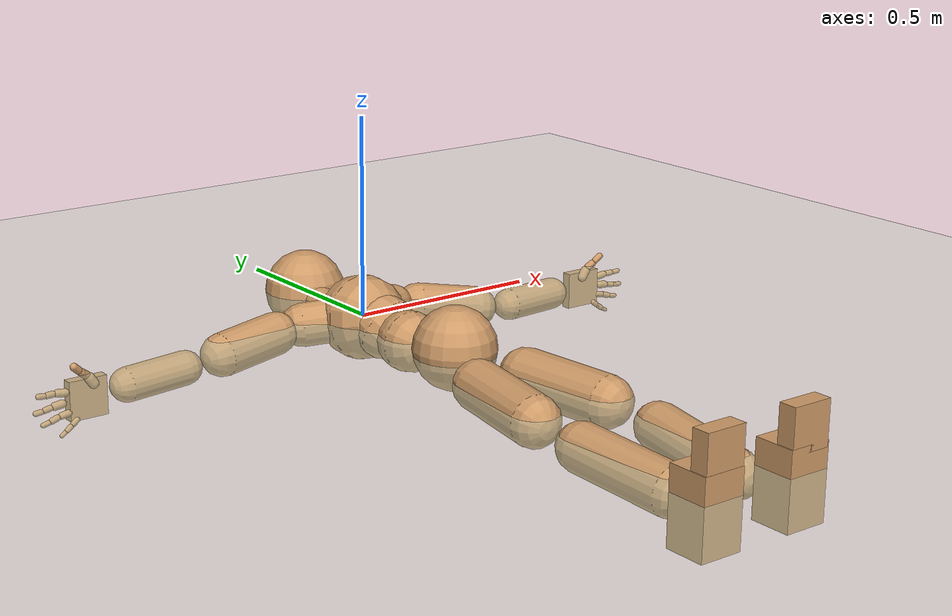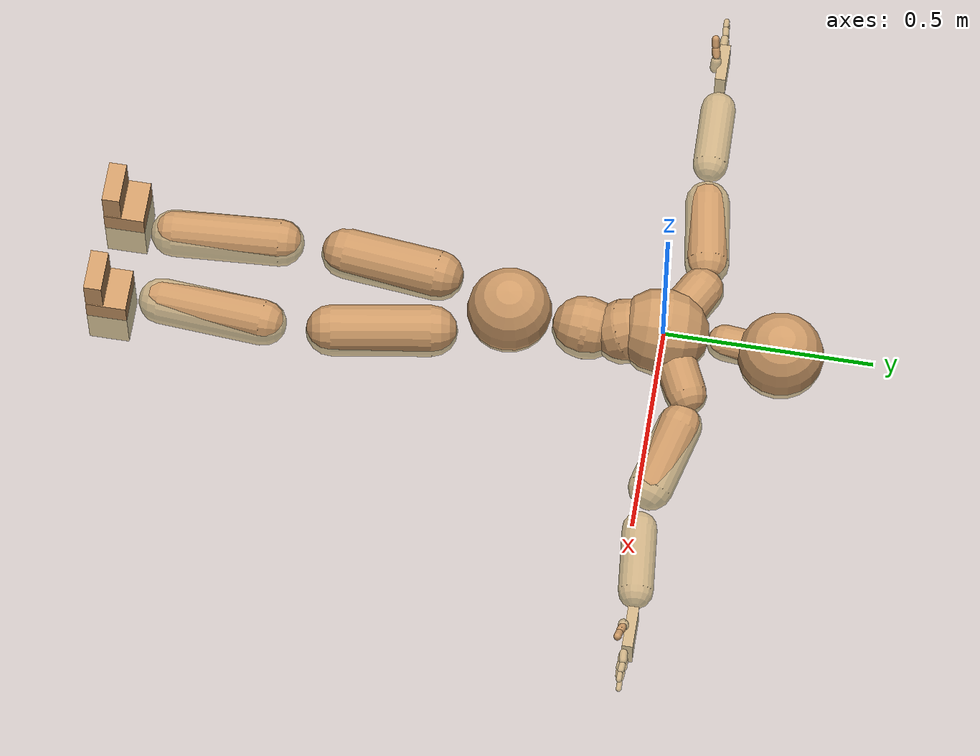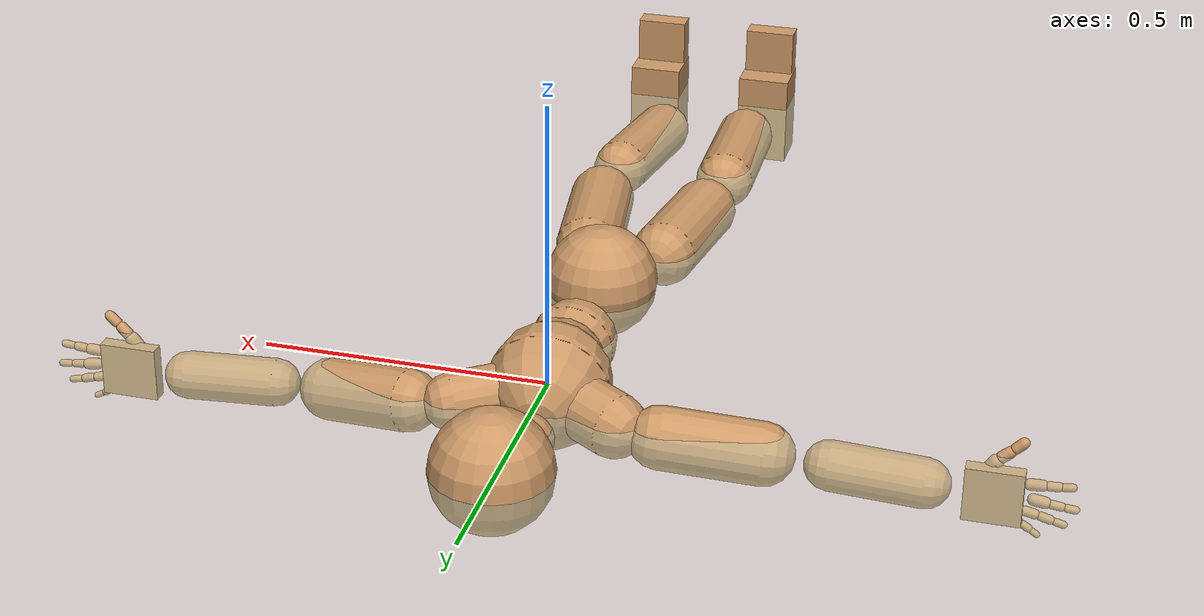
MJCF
<mujoco model="humanoid">
  <compiler coordinate="local"/>
  <default>
    <joint damping="0.0" armature="0.01" stiffness="0.0" limited="true"/>
    <geom conaffinity="1" condim="3" contype="7" margin="0.001" rgba="0.8 0.6 .4 1"/>
  </default>
  <asset>
    <texture type="skybox" builtin="gradient" rgb1=".4 .5 .6" rgb2="0 0 0" width="100" height="100"/>
    <texture builtin="flat" height="1278" mark="cross" markrgb="1 1 1" name="texgeom" random="0.01" rgb1="0.8 0.6 0.4" rgb2="0.8 0.6 0.4" type="cube" width="127"/>
    <texture builtin="checker" height="100" name="texplane" rgb1="0 0 0" rgb2="0.8 0.8 0.8" type="2d" width="100"/>
    <material name="MatPlane" reflectance="0.5" shininess="1" specular="1" texrepeat="60 60" texture="texplane"/>
    <material name="geom" texture="texgeom" texuniform="true"/>
  </asset>
  <worldbody>
    <light cutoff="100" diffuse="1 1 1" dir="-0 0 -1.3" directional="true" exponent="1" pos="0 0 1.3" specular=".1 .1 .1"/>
    <geom conaffinity="1" condim="3" name="floor" pos="0 0 0" rgba="0.8 0.9 0.8 1" size="100 100 .2" type="plane" material="MatPlane"/>
    <body name="Pelvis" pos="0.003 -0.3687 0.0127">
      <freejoint name="Pelvis"/>
      <geom type="sphere" contype="1" conaffinity="1" density="4629.6296296296305" size="0.1013" pos="0.0000 0.0000 0.0000" name="Pelvis"/>
      <body name="L_Hip" pos="0.0588 -0.096 -0.0263">
        <joint name="L_Hip_x" type="hinge" pos="0 0 0" axis="1 0 0" user="250 2.5 1 500 10 2" armature="0.01" range="-90.0000 90.0000" damping="0" stiffness="0"/>
        <joint name="L_Hip_y" type="hinge" pos="0 0 0" axis="0 1 0" user="250 2.5 1 500 10 2" armature="0.01" range="-90.0000 90.0000" damping="0" stiffness="0"/>
        <joint name="L_Hip_z" type="hinge" pos="0 0 0" axis="0 0 1" user="250 2.5 1 500 10 2" armature="0.01" range="-90.0000 90.0000" damping="0" stiffness="0"/>
        <geom type="capsule" contype="1" conaffinity="1" density="2040.816327" fromto="0.0114 -0.0788 -0.0017 0.0454 -0.3153 -0.0070" size="0.0614" name="L_Hip"/>
        <body name="L_Knee" pos="0.0568 -0.3941 -0.0087">
          <joint name="L_Knee_x" type="hinge" pos="0 0 0" axis="1 0 0" user="250 2.5 1 500 10 2" armature="0.01" range="-180.0000 180.0000" damping="0" stiffness="0"/>
          <joint name="L_Knee_y" type="hinge" pos="0 0 0" axis="0 1 0" user="250 2.5 1 500 10 2" armature="0.01" range="-5.6250 5.6250" damping="0" stiffness="0"/>
          <joint name="L_Knee_z" type="hinge" pos="0 0 0" axis="0 0 1" user="250 2.5 1 500 10 2" armature="0.01" range="-5.6250 5.6250" damping="0" stiffness="0"/>
          <geom type="capsule" contype="1" conaffinity="1" density="1234.567901" fromto="-0.0089 -0.0841 -0.0066 -0.0355 -0.3362 -0.0264" size="0.0548" name="L_Knee"/>
          <body name="L_Ankle" pos="-0.0444 -0.4203 -0.033">
            <joint name="L_Ankle_x" type="hinge" pos="0 0 0" axis="1 0 0" user="150 2.5 1 500 10 2" armature="0.01" range="-90.0000 90.0000" damping="0" stiffness="0"/>
            <joint name="L_Ankle_y" type="hinge" pos="0 0 0" axis="0 1 0" user="150 2.5 1 500 10 2" armature="0.01" range="-90.0000 90.0000" damping="0" stiffness="0"/>
            <joint name="L_Ankle_z" type="hinge" pos="0 0 0" axis="0 0 1" user="150 2.5 1 500 10 2" armature="0.01" range="-90.0000 90.0000" damping="0" stiffness="0"/>
            <geom type="box" density="450.058393" pos="0.0424 -0.0304 0.0244" size="0.0515 0.0481 0.089" quat="1.0000 0.0000 0.0000 0.0000" name="L_Ankle"/>
            <body name="L_Toe" pos="0.0492 -0.0609 0.1228">
              <joint name="L_Toe_x" type="hinge" pos="0 0 0" axis="1 0 0" user="150 1 1 500 1 1" armature="0.01" range="-90.0000 90.0000" damping="0" stiffness="0"/>
              <joint name="L_Toe_y" type="hinge" pos="0 0 0" axis="0 1 0" user="150 1 1 500 1 1" armature="0.01" range="-45.0000 45.0000" damping="0" stiffness="0"/>
              <joint name="L_Toe_z" type="hinge" pos="0 0 0" axis="0 0 1" user="150 1 1 500 1 1" armature="0.01" range="-45.0000 45.0000" damping="0" stiffness="0"/>
              <geom type="box" density="420.438102" pos="-0.0068 0.0035 0.0267" size="0.0493 0.0211 0.0513" quat="1.0000 0.0000 0.0000 0.0000" name="L_Toe"/>
            </body>
          </body>
        </body>
      </body>
      <body name="R_Hip" pos="-0.0638 -0.1078 -0.0211">
        <joint name="R_Hip_x" type="hinge" pos="0 0 0" axis="1 0 0" user="250 2.5 1 500 10 2" armature="0.01" range="-90.0000 90.0000" damping="0" stiffness="0"/>
        <joint name="R_Hip_y" type="hinge" pos="0 0 0" axis="0 1 0" user="250 2.5 1 500 10 2" armature="0.01" range="-90.0000 90.0000" damping="0" stiffness="0"/>
        <joint name="R_Hip_z" type="hinge" pos="0 0 0" axis="0 0 1" user="250 2.5 1 500 10 2" armature="0.01" range="-90.0000 90.0000" damping="0" stiffness="0"/>
        <geom type="capsule" contype="1" conaffinity="1" density="2040.816327" fromto="-0.0092 -0.0753 -0.0033 -0.0368 -0.3014 -0.0133" size="0.0607" name="R_Hip"/>
        <body name="R_Knee" pos="-0.046 -0.3767 -0.0166">
          <joint name="R_Knee_x" type="hinge" pos="0 0 0" axis="1 0 0" user="250 2.5 1 500 10 2" armature="0.01" range="-180.0000 180.0000" damping="0" stiffness="0"/>
          <joint name="R_Knee_y" type="hinge" pos="0 0 0" axis="0 1 0" user="250 2.5 1 500 10 2" armature="0.01" range="-5.6250 5.6250" damping="0" stiffness="0"/>
          <joint name="R_Knee_z" type="hinge" pos="0 0 0" axis="0 0 1" user="250 2.5 1 500 10 2" armature="0.01" range="-5.6250 5.6250" damping="0" stiffness="0"/>
          <geom type="capsule" contype="1" conaffinity="1" density="1234.567901" fromto="0.0031 -0.0857 -0.0042 0.0123 -0.3428 -0.0167" size="0.0565" name="R_Knee"/>
          <body name="R_Ankle" pos="0.0154 -0.4285 -0.0209">
            <joint name="R_Ankle_x" type="hinge" pos="0 0 0" axis="1 0 0" user="150 1 1 500 10 2" armature="0.01" range="-90.0000 90.0000" damping="0" stiffness="0"/>
            <joint name="R_Ankle_y" type="hinge" pos="0 0 0" axis="0 1 0" user="150 1 1 500 10 2" armature="0.01" range="-90.0000 90.0000" damping="0" stiffness="0"/>
            <joint name="R_Ankle_z" type="hinge" pos="0 0 0" axis="0 0 1" user="150 1 1 500 10 2" armature="0.01" range="-90.0000 90.0000" damping="0" stiffness="0"/>
            <geom type="box" density="450.049361" pos="-0.0252 -0.0278 0.0150" size="0.0515 0.0481 0.089" quat="1.0000 0.0000 0.0000 0.0000" name="R_Ankle"/>
            <body name="R_Toe" pos="-0.0401 -0.061 0.1236">
              <joint name="R_Toe_x" type="hinge" pos="0 0 0" axis="1 0 0" user="150 1 1 500 1 1" armature="0.01" range="-90.0000 90.0000" damping="0" stiffness="0"/>
              <joint name="R_Toe_y" type="hinge" pos="0 0 0" axis="0 1 0" user="150 1 1 500 1 1" armature="0.01" range="-45.0000 45.0000" damping="0" stiffness="0"/>
              <joint name="R_Toe_z" type="hinge" pos="0 0 0" axis="0 0 1" user="150 1 1 500 1 1" armature="0.01" range="-45.0000 45.0000" damping="0" stiffness="0"/>
              <geom type="box" density="420.432375" pos="0.0149 0.0063 0.0165" size="0.0493 0.0211 0.0513" quat="1.0000 0.0000 0.0000 0.0000" name="R_Toe"/>
            </body>
          </body>
        </body>
      </body>
      <body name="Torso" pos="-0.0028 0.1145 -0.029">
        <joint name="Torso_x" type="hinge" pos="0 0 0" axis="1 0 0" user="500 5 1 500 10 2" armature="0.01" range="-60.0000 60.0000" damping="0" stiffness="0"/>
        <joint name="Torso_y" type="hinge" pos="0 0 0" axis="0 1 0" user="500 5 1 500 10 2" armature="0.01" range="-60.0000 60.0000" damping="0" stiffness="0"/>
        <joint name="Torso_z" type="hinge" pos="0 0 0" axis="0 0 1" user="500 5 1 500 10 2" armature="0.01" range="-60.0000 60.0000" damping="0" stiffness="0"/>
        <geom type="capsule" contype="1" conaffinity="1" density="2040.816327" fromto="0.0045 0.0624 -0.0030 0.0055 0.0762 -0.0036" size="0.0745" name="Torso"/>
        <body name="Spine" pos="0.01 0.1386 -0.0066">
          <joint name="Spine_x" type="hinge" pos="0 0 0" axis="1 0 0" user="500 5 1 500 10 2" armature="0.01" range="-60.0000 60.0000" damping="0" stiffness="0"/>
          <joint name="Spine_y" type="hinge" pos="0 0 0" axis="0 1 0" user="500 5 1 500 10 2" armature="0.01" range="-60.0000 60.0000" damping="0" stiffness="0"/>
          <joint name="Spine_z" type="hinge" pos="0 0 0" axis="0 0 1" user="500 5 1 500 10 2" armature="0.01" range="-60.0000 60.0000" damping="0" stiffness="0"/>
          <geom type="capsule" contype="1" conaffinity="1" density="2040.816327" fromto="-0.0052 0.0248 0.0128 -0.0064 0.0303 0.0156" size="0.0787" name="Spine"/>
          <body name="Chest" pos="-0.0116 0.0552 0.0284">
            <joint name="Chest_x" type="hinge" pos="0 0 0" axis="1 0 0" user="500 5 1 500 10 2" armature="0.01" range="-60.0000 60.0000" damping="0" stiffness="0"/>
            <joint name="Chest_y" type="hinge" pos="0 0 0" axis="0 1 0" user="500 5 1 500 10 2" armature="0.01" range="-60.0000 60.0000" damping="0" stiffness="0"/>
            <joint name="Chest_z" type="hinge" pos="0 0 0" axis="0 0 1" user="500 5 1 500 10 2" armature="0.01" range="-60.0000 60.0000" damping="0" stiffness="0"/>
            <geom type="capsule" contype="1" conaffinity="1" density="2040.816327" fromto="-0.0021 0.0522 -0.0078 -0.0026 0.0639 -0.0095" size="0.1054" name="Chest"/>
            <body name="Neck" pos="-0.0125 0.1724 -0.0312">
              <joint name="Neck_x" type="hinge" pos="0 0 0" axis="1 0 0" user="150 1 1 250 50 4" armature="0.01" range="-180.0000 180.0000" damping="0" stiffness="0"/>
              <joint name="Neck_y" type="hinge" pos="0 0 0" axis="0 1 0" user="150 1 1 250 50 4" armature="0.01" range="-180.0000 180.0000" damping="0" stiffness="0"/>
              <joint name="Neck_z" type="hinge" pos="0 0 0" axis="0 0 1" user="150 1 1 250 50 4" armature="0.01" range="-180.0000 180.0000" damping="0" stiffness="0"/>
              <geom type="capsule" contype="1" conaffinity="1" density="1000" fromto="0.0051 0.0339 0.0045 0.0203 0.1357 0.0181" size="0.0433" name="Neck"/>
              <body name="Head" pos="0.0254 0.1696 0.0226">
                <joint name="Head_x" type="hinge" pos="0 0 0" axis="1 0 0" user="150 1 1 250 50 4" armature="0.01" range="-90.0000 90.0000" damping="0" stiffness="0"/>
                <joint name="Head_y" type="hinge" pos="0 0 0" axis="0 1 0" user="150 1 1 250 50 4" armature="0.01" range="-90.0000 90.0000" damping="0" stiffness="0"/>
                <joint name="Head_z" type="hinge" pos="0 0 0" axis="0 0 1" user="150 1 1 250 50 4" armature="0.01" range="-90.0000 90.0000" damping="0" stiffness="0"/>
                <geom type="sphere" contype="1" conaffinity="1" density="1000" size="0.1031" pos="0.0000 0.0000 0.0000" name="Head"/>
              </body>
            </body>
            <body name="L_Thorax" pos="0.0468 0.0884 -0.0071">
              <joint name="L_Thorax_x" type="hinge" pos="0 0 0" axis="1 0 0" user="200 2 1 500 50 4" armature="0.01" range="-180.0000 180.0000" damping="0" stiffness="0"/>
              <joint name="L_Thorax_y" type="hinge" pos="0 0 0" axis="0 1 0" user="200 2 1 500 50 4" armature="0.01" range="-180.0000 180.0000" damping="0" stiffness="0"/>
              <joint name="L_Thorax_z" type="hinge" pos="0 0 0" axis="0 0 1" user="200 2 1 500 50 4" armature="0.01" range="-180.0000 180.0000" damping="0" stiffness="0"/>
              <geom type="capsule" contype="1" conaffinity="1" density="1000" fromto="0.0243 0.0117 -0.0032 0.0971 0.0468 -0.0128" size="0.0502" name="L_Thorax"/>
              <body name="L_Shoulder" pos="0.1213 0.0584 -0.016">
                <joint name="L_Shoulder_x" type="hinge" pos="0 0 0" axis="1 0 0" user="200 2 1 500 50 4" armature="0.01" range="-180.0000 180.0000" damping="0" stiffness="0"/>
                <joint name="L_Shoulder_y" type="hinge" pos="0 0 0" axis="0 1 0" user="200 2 1 500 50 4" armature="0.01" range="-180.0000 180.0000" damping="0" stiffness="0"/>
                <joint name="L_Shoulder_z" type="hinge" pos="0 0 0" axis="0 0 1" user="200 2 1 500 50 4" armature="0.01" range="-180.0000 180.0000" damping="0" stiffness="0"/>
                <geom type="capsule" contype="1" conaffinity="1" density="1000" fromto="0.0520 -0.0149 -0.0088 0.2079 -0.0596 -0.0352" size="0.0535" name="L_Shoulder"/>
                <body name="L_Elbow" pos="0.2599 -0.0745 -0.044">
                  <joint name="L_Elbow_x" type="hinge" pos="0 0 0" axis="1 0 0" user="150 1 1 150 10 2" armature="0.01" range="-720.0000 720.0000" damping="0" stiffness="0"/>
                  <joint name="L_Elbow_y" type="hinge" pos="0 0 0" axis="0 1 0" user="150 1 1 150 10 2" armature="0.01" range="-720.0000 720.0000" damping="0" stiffness="0"/>
                  <joint name="L_Elbow_z" type="hinge" pos="0 0 0" axis="0 0 1" user="150 1 1 150 10 2" armature="0.01" range="-720.0000 720.0000" damping="0" stiffness="0"/>
                  <geom type="capsule" contype="1" conaffinity="1" density="1000" fromto="0.0522 0.0047 -0.0003 0.2088 0.0190 -0.0013" size="0.0415" name="L_Elbow"/>
                  <body name="L_Wrist" pos="0.2611 0.0237 -0.0017">
                    <joint name="L_Wrist_x" type="hinge" pos="0 0 0" axis="1 0 0" user="100 1 1 150 1 1" armature="0.01" range="-180.0000 180.0000" damping="0" stiffness="0"/>
                    <joint name="L_Wrist_y" type="hinge" pos="0 0 0" axis="0 1 0" user="100 1 1 150 1 1" armature="0.01" range="-180.0000 180.0000" damping="0" stiffness="0"/>
                    <joint name="L_Wrist_z" type="hinge" pos="0 0 0" axis="0 0 1" user="100 1 1 150 1 1" armature="0.01" range="-180.0000 180.0000" damping="0" stiffness="0"/>
                    <geom type="box" density="1203.169389" pos="0.0545 -0.0014 -0.0032" size="0.0504 0.0127 0.0476" quat="1.0000 0.0000 0.0000 0.0000" name="L_Wrist"/>
                    <body name="L_Index1" pos="0.1061 -0.0087 0.02">
                      <joint name="L_Index1_x" type="hinge" pos="0 0 0" axis="1 0 0" user="100 10 1 150" armature="0.01" range="-180.0000 180.0000" damping="0" stiffness="0"/>
                      <joint name="L_Index1_y" type="hinge" pos="0 0 0" axis="0 1 0" user="100 10 1 150" armature="0.01" range="-180.0000 180.0000" damping="0" stiffness="0"/>
                      <joint name="L_Index1_z" type="hinge" pos="0 0 0" axis="0 0 1" user="100 10 1 150" armature="0.01" range="-180.0000 180.0000" damping="0" stiffness="0"/>
                      <geom type="capsule" contype="1" conaffinity="1" density="1000" fromto="0.0066 0.0005 0.0006 0.0262 0.0019 0.0024" size="0.0094" name="L_Index1"/>
                      <body name="L_Index2" pos="0.0328 0.0024 0.003">
                        <joint name="L_Index2_x" type="hinge" pos="0 0 0" axis="1 0 0" user="100 10 1 150" armature="0.01" range="-180.0000 180.0000" damping="0" stiffness="0"/>
                        <joint name="L_Index2_y" type="hinge" pos="0 0 0" axis="0 1 0" user="100 10 1 150" armature="0.01" range="-180.0000 180.0000" damping="0" stiffness="0"/>
                        <joint name="L_Index2_z" type="hinge" pos="0 0 0" axis="0 0 1" user="100 10 1 150" armature="0.01" range="-180.0000 180.0000" damping="0" stiffness="0"/>
                        <geom type="capsule" contype="1" conaffinity="1" density="1000" fromto="0.0046 -0.0005 -0.0000 0.0185 -0.0019 -0.0000" size="0.0078" name="L_Index2"/>
                        <body name="L_Index3" pos="0.0231 -0.0024 0">
                          <joint name="L_Index3_x" type="hinge" pos="0 0 0" axis="1 0 0" user="100 10 1 150" armature="0.01" range="-180.0000 180.0000" damping="0" stiffness="0"/>
                          <joint name="L_Index3_y" type="hinge" pos="0 0 0" axis="0 1 0" user="100 10 1 150" armature="0.01" range="-180.0000 180.0000" damping="0" stiffness="0"/>
                          <joint name="L_Index3_z" type="hinge" pos="0 0 0" axis="0 0 1" user="100 10 1 150" armature="0.01" range="-180.0000 180.0000" damping="0" stiffness="0"/>
                          <geom type="capsule" contype="1" conaffinity="1" density="1000" fromto="0.0050 -0.0001 0.0004 0.0201 -0.0003 0.0016" size="0.0066" name="L_Index3"/>
                        </body>
                      </body>
                    </body>
                    <body name="L_Middle1" pos="0.1139 -0.0062 -0.0042">
                      <joint name="L_Middle1_x" type="hinge" pos="0 0 0" axis="1 0 0" user="100 10 1 150" armature="0.01" range="-180.0000 180.0000" damping="0" stiffness="0"/>
                      <joint name="L_Middle1_y" type="hinge" pos="0 0 0" axis="0 1 0" user="100 10 1 150" armature="0.01" range="-180.0000 180.0000" damping="0" stiffness="0"/>
                      <joint name="L_Middle1_z" type="hinge" pos="0 0 0" axis="0 0 1" user="100 10 1 150" armature="0.01" range="-180.0000 180.0000" damping="0" stiffness="0"/>
                      <geom type="capsule" contype="1" conaffinity="1" density="1000" fromto="0.0063 0.0002 -0.0008 0.0251 0.0007 -0.0033" size="0.0097" name="L_Middle1"/>
                      <body name="L_Middle2" pos="0.0314 0.0008 -0.0041">
                        <joint name="L_Middle2_x" type="hinge" pos="0 0 0" axis="1 0 0" user="100 10 1 150" armature="0.01" range="-180.0000 180.0000" damping="0" stiffness="0"/>
                        <joint name="L_Middle2_y" type="hinge" pos="0 0 0" axis="0 1 0" user="100 10 1 150" armature="0.01" range="-180.0000 180.0000" damping="0" stiffness="0"/>
                        <joint name="L_Middle2_z" type="hinge" pos="0 0 0" axis="0 0 1" user="100 10 1 150" armature="0.01" range="-180.0000 180.0000" damping="0" stiffness="0"/>
                        <geom type="capsule" contype="1" conaffinity="1" density="1000" fromto="0.0048 -0.0004 -0.0009 0.0193 -0.0017 -0.0034" size="0.0072" name="L_Middle2"/>
                        <body name="L_Middle3" pos="0.0241 -0.0021 -0.0043">
                          <joint name="L_Middle3_x" type="hinge" pos="0 0 0" axis="1 0 0" user="100 10 1 150" armature="0.01" range="-180.0000 180.0000" damping="0" stiffness="0"/>
                          <joint name="L_Middle3_y" type="hinge" pos="0 0 0" axis="0 1 0" user="100 10 1 150" armature="0.01" range="-180.0000 180.0000" damping="0" stiffness="0"/>
                          <joint name="L_Middle3_z" type="hinge" pos="0 0 0" axis="0 0 1" user="100 10 1 150" armature="0.01" range="-180.0000 180.0000" damping="0" stiffness="0"/>
                          <geom type="capsule" contype="1" conaffinity="1" density="1000" fromto="0.0052 -0.0000 -0.0005 0.0209 -0.0001 -0.0018" size="0.0063" name="L_Middle3"/>
                        </body>
                      </body>
                    </body>
                    <body name="L_Pinky1" pos="0.0878 -0.0149 -0.0454">
                      <joint name="L_Pinky1_x" type="hinge" pos="0 0 0" axis="1 0 0" user="100 10 1 150" armature="0.01" range="-180.0000 180.0000" damping="0" stiffness="0"/>
                      <joint name="L_Pinky1_y" type="hinge" pos="0 0 0" axis="0 1 0" user="100 10 1 150" armature="0.01" range="-180.0000 180.0000" damping="0" stiffness="0"/>
                      <joint name="L_Pinky1_z" type="hinge" pos="0 0 0" axis="0 0 1" user="100 10 1 150" armature="0.01" range="-180.0000 180.0000" damping="0" stiffness="0"/>
                      <geom type="capsule" contype="1" conaffinity="1" density="1000" fromto="0.0032 -0.0002 -0.0025 0.0128 -0.0010 -0.0098" size="0.0069" name="L_Pinky1"/>
                      <body name="L_Pinky2" pos="0.0161 -0.0012 -0.0123">
                        <joint name="L_Pinky2_x" type="hinge" pos="0 0 0" axis="1 0 0" user="100 10 1 150" armature="0.01" range="-180.0000 180.0000" damping="0" stiffness="0"/>
                        <joint name="L_Pinky2_y" type="hinge" pos="0 0 0" axis="0 1 0" user="100 10 1 150" armature="0.01" range="-180.0000 180.0000" damping="0" stiffness="0"/>
                        <joint name="L_Pinky2_z" type="hinge" pos="0 0 0" axis="0 0 1" user="100 10 1 150" armature="0.01" range="-180.0000 180.0000" damping="0" stiffness="0"/>
                        <geom type="capsule" contype="1" conaffinity="1" density="1000" fromto="0.0032 -0.0004 -0.0023 0.0128 -0.0014 -0.0091" size="0.0066" name="L_Pinky2"/>
                        <body name="L_Pinky3" pos="0.016 -0.0018 -0.0114">
                          <joint name="L_Pinky3_x" type="hinge" pos="0 0 0" axis="1 0 0" user="100 10 1 150" armature="0.01" range="-180.0000 180.0000" damping="0" stiffness="0"/>
                          <joint name="L_Pinky3_y" type="hinge" pos="0 0 0" axis="0 1 0" user="100 10 1 150" armature="0.01" range="-180.0000 180.0000" damping="0" stiffness="0"/>
                          <joint name="L_Pinky3_z" type="hinge" pos="0 0 0" axis="0 0 1" user="100 10 1 150" armature="0.01" range="-180.0000 180.0000" damping="0" stiffness="0"/>
                          <geom type="capsule" contype="1" conaffinity="1" density="1000" fromto="0.0036 0.0000 -0.0019 0.0144 0.0002 -0.0075" size="0.0051" name="L_Pinky3"/>
                        </body>
                      </body>
                    </body>
                    <body name="L_Ring1" pos="0.1017 -0.0093 -0.0285">
                      <joint name="L_Ring1_x" type="hinge" pos="0 0 0" axis="1 0 0" user="100 10 1 150" armature="0.01" range="-180.0000 180.0000" damping="0" stiffness="0"/>
                      <joint name="L_Ring1_y" type="hinge" pos="0 0 0" axis="0 1 0" user="100 10 1 150" armature="0.01" range="-180.0000 180.0000" damping="0" stiffness="0"/>
                      <joint name="L_Ring1_z" type="hinge" pos="0 0 0" axis="0 0 1" user="100 10 1 150" armature="0.01" range="-180.0000 180.0000" damping="0" stiffness="0"/>
                      <geom type="capsule" contype="1" conaffinity="1" density="1000" fromto="0.0058 0.0003 -0.0011 0.0231 0.0013 -0.0043" size="0.0082" name="L_Ring1"/>
                      <body name="L_Ring2" pos="0.0289 0.0016 -0.0054">
                        <joint name="L_Ring2_x" type="hinge" pos="0 0 0" axis="1 0 0" user="100 10 1 150" armature="0.01" range="-180.0000 180.0000" damping="0" stiffness="0"/>
                        <joint name="L_Ring2_y" type="hinge" pos="0 0 0" axis="0 1 0" user="100 10 1 150" armature="0.01" range="-180.0000 180.0000" damping="0" stiffness="0"/>
                        <joint name="L_Ring2_z" type="hinge" pos="0 0 0" axis="0 0 1" user="100 10 1 150" armature="0.01" range="-180.0000 180.0000" damping="0" stiffness="0"/>
                        <geom type="capsule" contype="1" conaffinity="1" density="1000" fromto="0.0047 -0.0003 -0.0015 0.0187 -0.0012 -0.0058" size="0.0076" name="L_Ring2"/>
                        <body name="L_Ring3" pos="0.0234 -0.0015 -0.0073">
                          <joint name="L_Ring3_x" type="hinge" pos="0 0 0" axis="1 0 0" user="100 10 1 150" armature="0.01" range="-180.0000 180.0000" damping="0" stiffness="0"/>
                          <joint name="L_Ring3_y" type="hinge" pos="0 0 0" axis="0 1 0" user="100 10 1 150" armature="0.01" range="-180.0000 180.0000" damping="0" stiffness="0"/>
                          <joint name="L_Ring3_z" type="hinge" pos="0 0 0" axis="0 0 1" user="100 10 1 150" armature="0.01" range="-180.0000 180.0000" damping="0" stiffness="0"/>
                          <geom type="capsule" contype="1" conaffinity="1" density="1000" fromto="0.0051 0.0001 -0.0011 0.0203 0.0004 -0.0042" size="0.0059" name="L_Ring3"/>
                        </body>
                      </body>
                    </body>
                    <body name="L_Thumb1" pos="0.0425 -0.0187 0.0268">
                      <joint name="L_Thumb1_x" type="hinge" pos="0 0 0" axis="1 0 0" user="100 10 1 150" armature="0.01" range="-180.0000 180.0000" damping="0" stiffness="0"/>
                      <joint name="L_Thumb1_y" type="hinge" pos="0 0 0" axis="0 1 0" user="100 10 1 150" armature="0.01" range="-180.0000 180.0000" damping="0" stiffness="0"/>
                      <joint name="L_Thumb1_z" type="hinge" pos="0 0 0" axis="0 0 1" user="100 10 1 150" armature="0.01" range="-180.0000 180.0000" damping="0" stiffness="0"/>
                      <geom type="capsule" contype="1" conaffinity="1" density="1000" fromto="0.0035 0.0002 0.0052 0.0141 0.0008 0.0207" size="0.0125" name="L_Thumb1"/>
                      <body name="L_Thumb2" pos="0.0176 0.001 0.0259">
                        <joint name="L_Thumb2_x" type="hinge" pos="0 0 0" axis="1 0 0" user="100 10 1 150" armature="0.01" range="-180.0000 180.0000" damping="0" stiffness="0"/>
                        <joint name="L_Thumb2_y" type="hinge" pos="0 0 0" axis="0 1 0" user="100 10 1 150" armature="0.01" range="-180.0000 180.0000" damping="0" stiffness="0"/>
                        <joint name="L_Thumb2_z" type="hinge" pos="0 0 0" axis="0 0 1" user="100 10 1 150" armature="0.01" range="-180.0000 180.0000" damping="0" stiffness="0"/>
                        <geom type="capsule" contype="1" conaffinity="1" density="1000" fromto="0.0042 -0.0011 0.0032 0.0170 -0.0042 0.0128" size="0.0099" name="L_Thumb2"/>
                        <body name="L_Thumb3" pos="0.0212 -0.0053 0.016">
                          <joint name="L_Thumb3_x" type="hinge" pos="0 0 0" axis="1 0 0" user="100 10 1 150" armature="0.01" range="-180.0000 180.0000" damping="0" stiffness="0"/>
                          <joint name="L_Thumb3_y" type="hinge" pos="0 0 0" axis="0 1 0" user="100 10 1 150" armature="0.01" range="-180.0000 180.0000" damping="0" stiffness="0"/>
                          <joint name="L_Thumb3_z" type="hinge" pos="0 0 0" axis="0 0 1" user="100 10 1 150" armature="0.01" range="-180.0000 180.0000" damping="0" stiffness="0"/>
                          <geom type="capsule" contype="1" conaffinity="1" density="1000" fromto="0.0046 -0.0007 0.0036 0.0186 -0.0026 0.0144" size="0.009" name="L_Thumb3"/>
                        </body>
                      </body>
                    </body>
                  </body>
                </body>
              </body>
            </body>
            <body name="R_Thorax" pos="-0.0484 0.0876 -0.0135">
              <joint name="R_Thorax_x" type="hinge" pos="0 0 0" axis="1 0 0" user="200 2 1 150 10 2" armature="0.01" range="-180.0000 180.0000" damping="0" stiffness="0"/>
              <joint name="R_Thorax_y" type="hinge" pos="0 0 0" axis="0 1 0" user="200 2 1 150 10 2" armature="0.01" range="-180.0000 180.0000" damping="0" stiffness="0"/>
              <joint name="R_Thorax_z" type="hinge" pos="0 0 0" axis="0 0 1" user="200 2 1 150 10 2" armature="0.01" range="-180.0000 180.0000" damping="0" stiffness="0"/>
              <geom type="capsule" contype="1" conaffinity="1" density="1000" fromto="-0.0209 0.0109 -0.0026 -0.0837 0.0435 -0.0103" size="0.0551" name="R_Thorax"/>
              <body name="R_Shoulder" pos="-0.1047 0.0543 -0.0129">
                <joint name="R_Shoulder_x" type="hinge" pos="0 0 0" axis="1 0 0" user="200 2 1 250 10 2" armature="0.01" range="-180.0000 180.0000" damping="0" stiffness="0"/>
                <joint name="R_Shoulder_y" type="hinge" pos="0 0 0" axis="0 1 0" user="200 2 1 250 10 2" armature="0.01" range="-180.0000 180.0000" damping="0" stiffness="0"/>
                <joint name="R_Shoulder_z" type="hinge" pos="0 0 0" axis="0 0 1" user="200 2 1 250 10 2" armature="0.01" range="-180.0000 180.0000" damping="0" stiffness="0"/>
                <geom type="capsule" contype="1" conaffinity="1" density="1000" fromto="-0.0555 -0.0076 -0.0056 -0.2218 -0.0302 -0.0222" size="0.0534" name="R_Shoulder"/>
                <body name="R_Elbow" pos="-0.2773 -0.0378 -0.0278">
                  <joint name="R_Elbow_x" type="hinge" pos="0 0 0" axis="1 0 0" user="150 1 1 150 10 2" armature="0.01" range="-720.0000 720.0000" damping="0" stiffness="0"/>
                  <joint name="R_Elbow_y" type="hinge" pos="0 0 0" axis="0 1 0" user="150 1 1 150 10 2" armature="0.01" range="-720.0000 720.0000" damping="0" stiffness="0"/>
                  <joint name="R_Elbow_z" type="hinge" pos="0 0 0" axis="0 0 1" user="150 1 1 150 10 2" armature="0.01" range="-720.0000 720.0000" damping="0" stiffness="0"/>
                  <geom type="capsule" contype="1" conaffinity="1" density="1000" fromto="-0.0516 -0.0010 -0.0030 -0.2064 -0.0039 -0.0119" size="0.0419" name="R_Elbow"/>
                  <body name="R_Wrist" pos="-0.258 -0.0049 -0.0149">
                    <joint name="R_Wrist_x" type="hinge" pos="0 0 0" axis="1 0 0" user="100 1 1 150 1 1" armature="0.01" range="-180.0000 180.0000" damping="0" stiffness="0"/>
                    <joint name="R_Wrist_y" type="hinge" pos="0 0 0" axis="0 1 0" user="100 1 1 150 1 1" armature="0.01" range="-180.0000 180.0000" damping="0" stiffness="0"/>
                    <joint name="R_Wrist_z" type="hinge" pos="0 0 0" axis="0 0 1" user="100 1 1 150 1 1" armature="0.01" range="-180.0000 180.0000" damping="0" stiffness="0"/>
                    <geom type="box" density="1233.249327" pos="-0.0559 -0.0046 -0.0030" size="0.0474 0.0127 0.0476" quat="1.0000 0.0000 0.0000 0.0000" name="R_Wrist"/>
                    <body name="R_Index1" pos="-0.1041 -0.0119 0.0203">
                      <joint name="R_Index1_x" type="hinge" pos="0 0 0" axis="1 0 0" user="100 10 1 150" armature="0.01" range="-180.0000 180.0000" damping="0" stiffness="0"/>
                      <joint name="R_Index1_y" type="hinge" pos="0 0 0" axis="0 1 0" user="100 10 1 150" armature="0.01" range="-180.0000 180.0000" damping="0" stiffness="0"/>
                      <joint name="R_Index1_z" type="hinge" pos="0 0 0" axis="0 0 1" user="100 10 1 150" armature="0.01" range="-180.0000 180.0000" damping="0" stiffness="0"/>
                      <geom type="capsule" contype="1" conaffinity="1" density="1000" fromto="-0.0066 0.0005 0.0006 -0.0262 0.0019 0.0024" size="0.0094" name="R_Index1"/>
                      <body name="R_Index2" pos="-0.0328 0.0024 0.003">
                        <joint name="R_Index2_x" type="hinge" pos="0 0 0" axis="1 0 0" user="100 10 1 150" armature="0.01" range="-180.0000 180.0000" damping="0" stiffness="0"/>
                        <joint name="R_Index2_y" type="hinge" pos="0 0 0" axis="0 1 0" user="100 10 1 150" armature="0.01" range="-180.0000 180.0000" damping="0" stiffness="0"/>
                        <joint name="R_Index2_z" type="hinge" pos="0 0 0" axis="0 0 1" user="100 10 1 150" armature="0.01" range="-180.0000 180.0000" damping="0" stiffness="0"/>
                        <geom type="capsule" contype="1" conaffinity="1" density="1000" fromto="-0.0046 -0.0005 -0.0000 -0.0185 -0.0019 -0.0000" size="0.0078" name="R_Index2"/>
                        <body name="R_Index3" pos="-0.0231 -0.0024 0">
                          <joint name="R_Index3_x" type="hinge" pos="0 0 0" axis="1 0 0" user="100 10 1 150" armature="0.01" range="-180.0000 180.0000" damping="0" stiffness="0"/>
                          <joint name="R_Index3_y" type="hinge" pos="0 0 0" axis="0 1 0" user="100 10 1 150" armature="0.01" range="-180.0000 180.0000" damping="0" stiffness="0"/>
                          <joint name="R_Index3_z" type="hinge" pos="0 0 0" axis="0 0 1" user="100 10 1 150" armature="0.01" range="-180.0000 180.0000" damping="0" stiffness="0"/>
                          <geom type="capsule" contype="1" conaffinity="1" density="1000" fromto="-0.0042 -0.0001 0.0004 -0.0169 -0.0003 0.0016" size="0.0069" name="R_Index3"/>
                        </body>
                      </body>
                    </body>
                    <body name="R_Middle1" pos="-0.1119 -0.0094 -0.004">
                      <joint name="R_Middle1_x" type="hinge" pos="0 0 0" axis="1 0 0" user="100 10 1 150" armature="0.01" range="-180.0000 180.0000" damping="0" stiffness="0"/>
                      <joint name="R_Middle1_y" type="hinge" pos="0 0 0" axis="0 1 0" user="100 10 1 150" armature="0.01" range="-180.0000 180.0000" damping="0" stiffness="0"/>
                      <joint name="R_Middle1_z" type="hinge" pos="0 0 0" axis="0 0 1" user="100 10 1 150" armature="0.01" range="-180.0000 180.0000" damping="0" stiffness="0"/>
                      <geom type="capsule" contype="1" conaffinity="1" density="1000" fromto="-0.0063 0.0002 -0.0008 -0.0251 0.0007 -0.0033" size="0.0097" name="R_Middle1"/>
                      <body name="R_Middle2" pos="-0.0314 0.0008 -0.0041">
                        <joint name="R_Middle2_x" type="hinge" pos="0 0 0" axis="1 0 0" user="100 10 1 150" armature="0.01" range="-180.0000 180.0000" damping="0" stiffness="0"/>
                        <joint name="R_Middle2_y" type="hinge" pos="0 0 0" axis="0 1 0" user="100 10 1 150" armature="0.01" range="-180.0000 180.0000" damping="0" stiffness="0"/>
                        <joint name="R_Middle2_z" type="hinge" pos="0 0 0" axis="0 0 1" user="100 10 1 150" armature="0.01" range="-180.0000 180.0000" damping="0" stiffness="0"/>
                        <geom type="capsule" contype="1" conaffinity="1" density="1000" fromto="-0.0048 -0.0004 -0.0009 -0.0193 -0.0017 -0.0034" size="0.0072" name="R_Middle2"/>
                        <body name="R_Middle3" pos="-0.0241 -0.0021 -0.0043">
                          <joint name="R_Middle3_x" type="hinge" pos="0 0 0" axis="1 0 0" user="100 10 1 150" armature="0.01" range="-180.0000 180.0000" damping="0" stiffness="0"/>
                          <joint name="R_Middle3_y" type="hinge" pos="0 0 0" axis="0 1 0" user="100 10 1 150" armature="0.01" range="-180.0000 180.0000" damping="0" stiffness="0"/>
                          <joint name="R_Middle3_z" type="hinge" pos="0 0 0" axis="0 0 1" user="100 10 1 150" armature="0.01" range="-180.0000 180.0000" damping="0" stiffness="0"/>
                          <geom type="capsule" contype="1" conaffinity="1" density="1000" fromto="-0.0044 -0.0000 -0.0005 -0.0177 -0.0001 -0.0018" size="0.0066" name="R_Middle3"/>
                        </body>
                      </body>
                    </body>
                    <body name="R_Pinky1" pos="-0.0857 -0.0181 -0.0451">
                      <joint name="R_Pinky1_x" type="hinge" pos="0 0 0" axis="1 0 0" user="100 10 1 150" armature="0.01" range="-180.0000 180.0000" damping="0" stiffness="0"/>
                      <joint name="R_Pinky1_y" type="hinge" pos="0 0 0" axis="0 1 0" user="100 10 1 150" armature="0.01" range="-180.0000 180.0000" damping="0" stiffness="0"/>
                      <joint name="R_Pinky1_z" type="hinge" pos="0 0 0" axis="0 0 1" user="100 10 1 150" armature="0.01" range="-180.0000 180.0000" damping="0" stiffness="0"/>
                      <geom type="capsule" contype="1" conaffinity="1" density="1000" fromto="-0.0032 -0.0002 -0.0025 -0.0128 -0.0010 -0.0098" size="0.0069" name="R_Pinky1"/>
                      <body name="R_Pinky2" pos="-0.0161 -0.0012 -0.0123">
                        <joint name="R_Pinky2_x" type="hinge" pos="0 0 0" axis="1 0 0" user="100 10 1 150" armature="0.01" range="-180.0000 180.0000" damping="0" stiffness="0"/>
                        <joint name="R_Pinky2_y" type="hinge" pos="0 0 0" axis="0 1 0" user="100 10 1 150" armature="0.01" range="-180.0000 180.0000" damping="0" stiffness="0"/>
                        <joint name="R_Pinky2_z" type="hinge" pos="0 0 0" axis="0 0 1" user="100 10 1 150" armature="0.01" range="-180.0000 180.0000" damping="0" stiffness="0"/>
                        <geom type="capsule" contype="1" conaffinity="1" density="1000" fromto="-0.0032 -0.0004 -0.0023 -0.0128 -0.0014 -0.0091" size="0.0066" name="R_Pinky2"/>
                        <body name="R_Pinky3" pos="-0.016 -0.0018 -0.0114">
                          <joint name="R_Pinky3_x" type="hinge" pos="0 0 0" axis="1 0 0" user="100 10 1 150" armature="0.01" range="-180.0000 180.0000" damping="0" stiffness="0"/>
                          <joint name="R_Pinky3_y" type="hinge" pos="0 0 0" axis="0 1 0" user="100 10 1 150" armature="0.01" range="-180.0000 180.0000" damping="0" stiffness="0"/>
                          <joint name="R_Pinky3_z" type="hinge" pos="0 0 0" axis="0 0 1" user="100 10 1 150" armature="0.01" range="-180.0000 180.0000" damping="0" stiffness="0"/>
                          <geom type="capsule" contype="1" conaffinity="1" density="1000" fromto="-0.0028 0.0000 -0.0019 -0.0112 0.0002 -0.0075" size="0.0053" name="R_Pinky3"/>
                        </body>
                      </body>
                    </body>
                    <body name="R_Ring1" pos="-0.0996 -0.0125 -0.0282">
                      <joint name="R_Ring1_x" type="hinge" pos="0 0 0" axis="1 0 0" user="100 10 1 150" armature="0.01" range="-180.0000 180.0000" damping="0" stiffness="0"/>
                      <joint name="R_Ring1_y" type="hinge" pos="0 0 0" axis="0 1 0" user="100 10 1 150" armature="0.01" range="-180.0000 180.0000" damping="0" stiffness="0"/>
                      <joint name="R_Ring1_z" type="hinge" pos="0 0 0" axis="0 0 1" user="100 10 1 150" armature="0.01" range="-180.0000 180.0000" damping="0" stiffness="0"/>
                      <geom type="capsule" contype="1" conaffinity="1" density="1000" fromto="-0.0058 0.0003 -0.0011 -0.0231 0.0013 -0.0043" size="0.0082" name="R_Ring1"/>
                      <body name="R_Ring2" pos="-0.0289 0.0016 -0.0054">
                        <joint name="R_Ring2_x" type="hinge" pos="0 0 0" axis="1 0 0" user="100 10 1 150" armature="0.01" range="-180.0000 180.0000" damping="0" stiffness="0"/>
                        <joint name="R_Ring2_y" type="hinge" pos="0 0 0" axis="0 1 0" user="100 10 1 150" armature="0.01" range="-180.0000 180.0000" damping="0" stiffness="0"/>
                        <joint name="R_Ring2_z" type="hinge" pos="0 0 0" axis="0 0 1" user="100 10 1 150" armature="0.01" range="-180.0000 180.0000" damping="0" stiffness="0"/>
                        <geom type="capsule" contype="1" conaffinity="1" density="1000" fromto="-0.0047 -0.0003 -0.0015 -0.0187 -0.0012 -0.0058" size="0.0076" name="R_Ring2"/>
                        <body name="R_Ring3" pos="-0.0234 -0.0015 -0.0073">
                          <joint name="R_Ring3_x" type="hinge" pos="0 0 0" axis="1 0 0" user="100 10 1 150" armature="0.01" range="-180.0000 180.0000" damping="0" stiffness="0"/>
                          <joint name="R_Ring3_y" type="hinge" pos="0 0 0" axis="0 1 0" user="100 10 1 150" armature="0.01" range="-180.0000 180.0000" damping="0" stiffness="0"/>
                          <joint name="R_Ring3_z" type="hinge" pos="0 0 0" axis="0 0 1" user="100 10 1 150" armature="0.01" range="-180.0000 180.0000" damping="0" stiffness="0"/>
                          <geom type="capsule" contype="1" conaffinity="1" density="1000" fromto="-0.0043 0.0001 -0.0011 -0.0171 0.0004 -0.0042" size="0.0062" name="R_Ring3"/>
                        </body>
                      </body>
                    </body>
                    <body name="R_Thumb1" pos="-0.0405 -0.0219 0.0271">
                      <joint name="R_Thumb1_x" type="hinge" pos="0 0 0" axis="1 0 0" user="100 10 1 150" armature="0.01" range="-180.0000 180.0000" damping="0" stiffness="0"/>
                      <joint name="R_Thumb1_y" type="hinge" pos="0 0 0" axis="0 1 0" user="100 10 1 150" armature="0.01" range="-180.0000 180.0000" damping="0" stiffness="0"/>
                      <joint name="R_Thumb1_z" type="hinge" pos="0 0 0" axis="0 0 1" user="100 10 1 150" armature="0.01" range="-180.0000 180.0000" damping="0" stiffness="0"/>
                      <geom type="capsule" contype="1" conaffinity="1" density="1000" fromto="-0.0035 0.0002 0.0052 -0.0141 0.0008 0.0207" size="0.0125" name="R_Thumb1"/>
                      <body name="R_Thumb2" pos="-0.0176 0.001 0.0259">
                        <joint name="R_Thumb2_x" type="hinge" pos="0 0 0" axis="1 0 0" user="100 10 1 150" armature="0.01" range="-180.0000 180.0000" damping="0" stiffness="0"/>
                        <joint name="R_Thumb2_y" type="hinge" pos="0 0 0" axis="0 1 0" user="100 10 1 150" armature="0.01" range="-180.0000 180.0000" damping="0" stiffness="0"/>
                        <joint name="R_Thumb2_z" type="hinge" pos="0 0 0" axis="0 0 1" user="100 10 1 150" armature="0.01" range="-180.0000 180.0000" damping="0" stiffness="0"/>
                        <geom type="capsule" contype="1" conaffinity="1" density="1000" fromto="-0.0042 -0.0011 0.0032 -0.0170 -0.0042 0.0128" size="0.0099" name="R_Thumb2"/>
                        <body name="R_Thumb3" pos="-0.0212 -0.0053 0.016">
                          <joint name="R_Thumb3_x" type="hinge" pos="0 0 0" axis="1 0 0" user="100 10 1 150" armature="0.01" range="-180.0000 180.0000" damping="0" stiffness="0"/>
                          <joint name="R_Thumb3_y" type="hinge" pos="0 0 0" axis="0 1 0" user="100 10 1 150" armature="0.01" range="-180.0000 180.0000" damping="0" stiffness="0"/>
                          <joint name="R_Thumb3_z" type="hinge" pos="0 0 0" axis="0 0 1" user="100 10 1 150" armature="0.01" range="-180.0000 180.0000" damping="0" stiffness="0"/>
                          <geom type="capsule" contype="1" conaffinity="1" density="1000" fromto="-0.0038 -0.0007 0.0036 -0.0154 -0.0026 0.0144" size="0.0093" name="R_Thumb3"/>
                        </body>
                      </body>
                    </body>
                  </body>
                </body>
              </body>
            </body>
          </body>
        </body>
      </body>
    </body>
  </worldbody>
  <actuator>
    <motor name="L_Hip_x" joint="L_Hip_x" gear="1"/>
    <motor name="L_Hip_y" joint="L_Hip_y" gear="1"/>
    <motor name="L_Hip_z" joint="L_Hip_z" gear="1"/>
    <motor name="L_Knee_x" joint="L_Knee_x" gear="1"/>
    <motor name="L_Knee_y" joint="L_Knee_y" gear="1"/>
    <motor name="L_Knee_z" joint="L_Knee_z" gear="1"/>
    <motor name="L_Ankle_x" joint="L_Ankle_x" gear="1"/>
    <motor name="L_Ankle_y" joint="L_Ankle_y" gear="1"/>
    <motor name="L_Ankle_z" joint="L_Ankle_z" gear="1"/>
    <motor name="L_Toe_x" joint="L_Toe_x" gear="1"/>
    <motor name="L_Toe_y" joint="L_Toe_y" gear="1"/>
    <motor name="L_Toe_z" joint="L_Toe_z" gear="1"/>
    <motor name="R_Hip_x" joint="R_Hip_x" gear="1"/>
    <motor name="R_Hip_y" joint="R_Hip_y" gear="1"/>
    <motor name="R_Hip_z" joint="R_Hip_z" gear="1"/>
    <motor name="R_Knee_x" joint="R_Knee_x" gear="1"/>
    <motor name="R_Knee_y" joint="R_Knee_y" gear="1"/>
    <motor name="R_Knee_z" joint="R_Knee_z" gear="1"/>
    <motor name="R_Ankle_x" joint="R_Ankle_x" gear="1"/>
    <motor name="R_Ankle_y" joint="R_Ankle_y" gear="1"/>
    <motor name="R_Ankle_z" joint="R_Ankle_z" gear="1"/>
    <motor name="R_Toe_x" joint="R_Toe_x" gear="1"/>
    <motor name="R_Toe_y" joint="R_Toe_y" gear="1"/>
    <motor name="R_Toe_z" joint="R_Toe_z" gear="1"/>
    <motor name="Torso_x" joint="Torso_x" gear="1"/>
    <motor name="Torso_y" joint="Torso_y" gear="1"/>
    <motor name="Torso_z" joint="Torso_z" gear="1"/>
    <motor name="Spine_x" joint="Spine_x" gear="1"/>
    <motor name="Spine_y" joint="Spine_y" gear="1"/>
    <motor name="Spine_z" joint="Spine_z" gear="1"/>
    <motor name="Chest_x" joint="Chest_x" gear="1"/>
    <motor name="Chest_y" joint="Chest_y" gear="1"/>
    <motor name="Chest_z" joint="Chest_z" gear="1"/>
    <motor name="Neck_x" joint="Neck_x" gear="1"/>
    <motor name="Neck_y" joint="Neck_y" gear="1"/>
    <motor name="Neck_z" joint="Neck_z" gear="1"/>
    <motor name="Head_x" joint="Head_x" gear="1"/>
    <motor name="Head_y" joint="Head_y" gear="1"/>
    <motor name="Head_z" joint="Head_z" gear="1"/>
    <motor name="L_Thorax_x" joint="L_Thorax_x" gear="1"/>
    <motor name="L_Thorax_y" joint="L_Thorax_y" gear="1"/>
    <motor name="L_Thorax_z" joint="L_Thorax_z" gear="1"/>
    <motor name="L_Shoulder_x" joint="L_Shoulder_x" gear="1"/>
    <motor name="L_Shoulder_y" joint="L_Shoulder_y" gear="1"/>
    <motor name="L_Shoulder_z" joint="L_Shoulder_z" gear="1"/>
    <motor name="L_Elbow_x" joint="L_Elbow_x" gear="1"/>
    <motor name="L_Elbow_y" joint="L_Elbow_y" gear="1"/>
    <motor name="L_Elbow_z" joint="L_Elbow_z" gear="1"/>
    <motor name="L_Wrist_x" joint="L_Wrist_x" gear="1"/>
    <motor name="L_Wrist_y" joint="L_Wrist_y" gear="1"/>
    <motor name="L_Wrist_z" joint="L_Wrist_z" gear="1"/>
    <motor name="L_Index1_x" joint="L_Index1_x" gear="1"/>
    <motor name="L_Index1_y" joint="L_Index1_y" gear="1"/>
    <motor name="L_Index1_z" joint="L_Index1_z" gear="1"/>
    <motor name="L_Index2_x" joint="L_Index2_x" gear="1"/>
    <motor name="L_Index2_y" joint="L_Index2_y" gear="1"/>
    <motor name="L_Index2_z" joint="L_Index2_z" gear="1"/>
    <motor name="L_Index3_x" joint="L_Index3_x" gear="1"/>
    <motor name="L_Index3_y" joint="L_Index3_y" gear="1"/>
    <motor name="L_Index3_z" joint="L_Index3_z" gear="1"/>
    <motor name="L_Middle1_x" joint="L_Middle1_x" gear="1"/>
    <motor name="L_Middle1_y" joint="L_Middle1_y" gear="1"/>
    <motor name="L_Middle1_z" joint="L_Middle1_z" gear="1"/>
    <motor name="L_Middle2_x" joint="L_Middle2_x" gear="1"/>
    <motor name="L_Middle2_y" joint="L_Middle2_y" gear="1"/>
    <motor name="L_Middle2_z" joint="L_Middle2_z" gear="1"/>
    <motor name="L_Middle3_x" joint="L_Middle3_x" gear="1"/>
    <motor name="L_Middle3_y" joint="L_Middle3_y" gear="1"/>
    <motor name="L_Middle3_z" joint="L_Middle3_z" gear="1"/>
    <motor name="L_Pinky1_x" joint="L_Pinky1_x" gear="1"/>
    <motor name="L_Pinky1_y" joint="L_Pinky1_y" gear="1"/>
    <motor name="L_Pinky1_z" joint="L_Pinky1_z" gear="1"/>
    <motor name="L_Pinky2_x" joint="L_Pinky2_x" gear="1"/>
    <motor name="L_Pinky2_y" joint="L_Pinky2_y" gear="1"/>
    <motor name="L_Pinky2_z" joint="L_Pinky2_z" gear="1"/>
    <motor name="L_Pinky3_x" joint="L_Pinky3_x" gear="1"/>
    <motor name="L_Pinky3_y" joint="L_Pinky3_y" gear="1"/>
    <motor name="L_Pinky3_z" joint="L_Pinky3_z" gear="1"/>
    <motor name="L_Ring1_x" joint="L_Ring1_x" gear="1"/>
    <motor name="L_Ring1_y" joint="L_Ring1_y" gear="1"/>
    <motor name="L_Ring1_z" joint="L_Ring1_z" gear="1"/>
    <motor name="L_Ring2_x" joint="L_Ring2_x" gear="1"/>
    <motor name="L_Ring2_y" joint="L_Ring2_y" gear="1"/>
    <motor name="L_Ring2_z" joint="L_Ring2_z" gear="1"/>
    <motor name="L_Ring3_x" joint="L_Ring3_x" gear="1"/>
    <motor name="L_Ring3_y" joint="L_Ring3_y" gear="1"/>
    <motor name="L_Ring3_z" joint="L_Ring3_z" gear="1"/>
    <motor name="L_Thumb1_x" joint="L_Thumb1_x" gear="1"/>
    <motor name="L_Thumb1_y" joint="L_Thumb1_y" gear="1"/>
    <motor name="L_Thumb1_z" joint="L_Thumb1_z" gear="1"/>
    <motor name="L_Thumb2_x" joint="L_Thumb2_x" gear="1"/>
    <motor name="L_Thumb2_y" joint="L_Thumb2_y" gear="1"/>
    <motor name="L_Thumb2_z" joint="L_Thumb2_z" gear="1"/>
    <motor name="L_Thumb3_x" joint="L_Thumb3_x" gear="1"/>
    <motor name="L_Thumb3_y" joint="L_Thumb3_y" gear="1"/>
    <motor name="L_Thumb3_z" joint="L_Thumb3_z" gear="1"/>
    <motor name="R_Thorax_x" joint="R_Thorax_x" gear="1"/>
    <motor name="R_Thorax_y" joint="R_Thorax_y" gear="1"/>
    <motor name="R_Thorax_z" joint="R_Thorax_z" gear="1"/>
    <motor name="R_Shoulder_x" joint="R_Shoulder_x" gear="1"/>
    <motor name="R_Shoulder_y" joint="R_Shoulder_y" gear="1"/>
    <motor name="R_Shoulder_z" joint="R_Shoulder_z" gear="1"/>
    <motor name="R_Elbow_x" joint="R_Elbow_x" gear="1"/>
    <motor name="R_Elbow_y" joint="R_Elbow_y" gear="1"/>
    <motor name="R_Elbow_z" joint="R_Elbow_z" gear="1"/>
    <motor name="R_Wrist_x" joint="R_Wrist_x" gear="1"/>
    <motor name="R_Wrist_y" joint="R_Wrist_y" gear="1"/>
    <motor name="R_Wrist_z" joint="R_Wrist_z" gear="1"/>
    <motor name="R_Index1_x" joint="R_Index1_x" gear="1"/>
    <motor name="R_Index1_y" joint="R_Index1_y" gear="1"/>
    <motor name="R_Index1_z" joint="R_Index1_z" gear="1"/>
    <motor name="R_Index2_x" joint="R_Index2_x" gear="1"/>
    <motor name="R_Index2_y" joint="R_Index2_y" gear="1"/>
    <motor name="R_Index2_z" joint="R_Index2_z" gear="1"/>
    <motor name="R_Index3_x" joint="R_Index3_x" gear="1"/>
    <motor name="R_Index3_y" joint="R_Index3_y" gear="1"/>
    <motor name="R_Index3_z" joint="R_Index3_z" gear="1"/>
    <motor name="R_Middle1_x" joint="R_Middle1_x" gear="1"/>
    <motor name="R_Middle1_y" joint="R_Middle1_y" gear="1"/>
    <motor name="R_Middle1_z" joint="R_Middle1_z" gear="1"/>
    <motor name="R_Middle2_x" joint="R_Middle2_x" gear="1"/>
    <motor name="R_Middle2_y" joint="R_Middle2_y" gear="1"/>
    <motor name="R_Middle2_z" joint="R_Middle2_z" gear="1"/>
    <motor name="R_Middle3_x" joint="R_Middle3_x" gear="1"/>
    <motor name="R_Middle3_y" joint="R_Middle3_y" gear="1"/>
    <motor name="R_Middle3_z" joint="R_Middle3_z" gear="1"/>
    <motor name="R_Pinky1_x" joint="R_Pinky1_x" gear="1"/>
    <motor name="R_Pinky1_y" joint="R_Pinky1_y" gear="1"/>
    <motor name="R_Pinky1_z" joint="R_Pinky1_z" gear="1"/>
    <motor name="R_Pinky2_x" joint="R_Pinky2_x" gear="1"/>
    <motor name="R_Pinky2_y" joint="R_Pinky2_y" gear="1"/>
    <motor name="R_Pinky2_z" joint="R_Pinky2_z" gear="1"/>
    <motor name="R_Pinky3_x" joint="R_Pinky3_x" gear="1"/>
    <motor name="R_Pinky3_y" joint="R_Pinky3_y" gear="1"/>
    <motor name="R_Pinky3_z" joint="R_Pinky3_z" gear="1"/>
    <motor name="R_Ring1_x" joint="R_Ring1_x" gear="1"/>
    <motor name="R_Ring1_y" joint="R_Ring1_y" gear="1"/>
    <motor name="R_Ring1_z" joint="R_Ring1_z" gear="1"/>
    <motor name="R_Ring2_x" joint="R_Ring2_x" gear="1"/>
    <motor name="R_Ring2_y" joint="R_Ring2_y" gear="1"/>
    <motor name="R_Ring2_z" joint="R_Ring2_z" gear="1"/>
    <motor name="R_Ring3_x" joint="R_Ring3_x" gear="1"/>
    <motor name="R_Ring3_y" joint="R_Ring3_y" gear="1"/>
    <motor name="R_Ring3_z" joint="R_Ring3_z" gear="1"/>
    <motor name="R_Thumb1_x" joint="R_Thumb1_x" gear="1"/>
    <motor name="R_Thumb1_y" joint="R_Thumb1_y" gear="1"/>
    <motor name="R_Thumb1_z" joint="R_Thumb1_z" gear="1"/>
    <motor name="R_Thumb2_x" joint="R_Thumb2_x" gear="1"/>
    <motor name="R_Thumb2_y" joint="R_Thumb2_y" gear="1"/>
    <motor name="R_Thumb2_z" joint="R_Thumb2_z" gear="1"/>
    <motor name="R_Thumb3_x" joint="R_Thumb3_x" gear="1"/>
    <motor name="R_Thumb3_y" joint="R_Thumb3_y" gear="1"/>
    <motor name="R_Thumb3_z" joint="R_Thumb3_z" gear="1"/>
  </actuator>
  <contact>
    <exclude body1="Torso" body2="Chest"/>
    <exclude body1="Head" body2="Chest"/>
    <exclude body1="R_Knee" body2="R_Toe"/>
    <exclude body1="R_Knee" body2="L_Ankle"/>
    <exclude body1="R_Knee" body2="L_Toe"/>
    <exclude body1="L_Knee" body2="L_Toe"/>
    <exclude body1="L_Knee" body2="R_Ankle"/>
    <exclude body1="L_Knee" body2="R_Toe"/>
    <exclude body1="L_Shoulder" body2="Chest"/>
    <exclude body1="R_Shoulder" body2="Chest"/>
  </contact>
  <sensor/>
  <size njmax="700" nconmax="700"/>
</mujoco>
